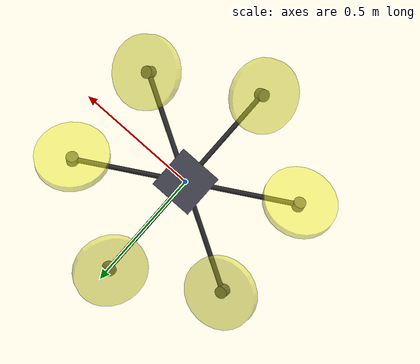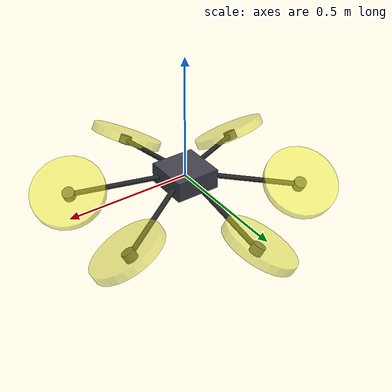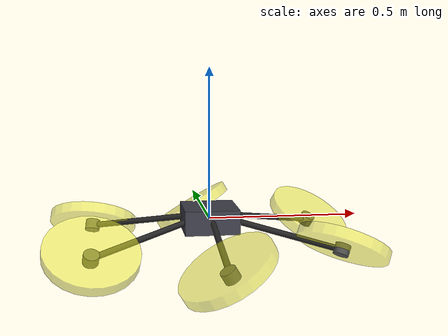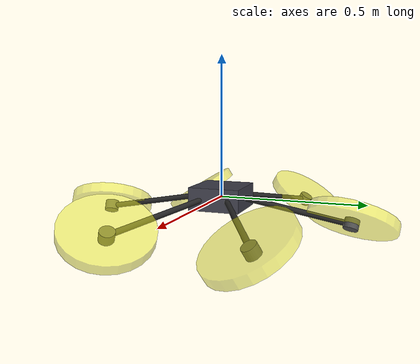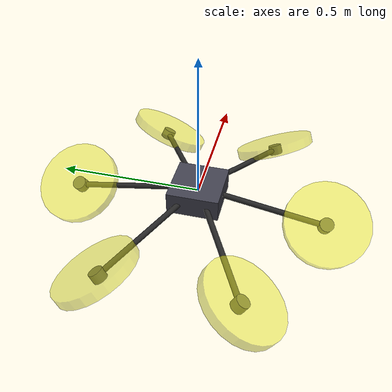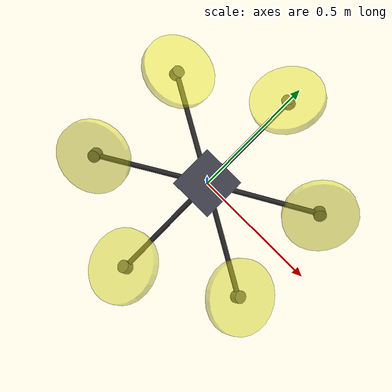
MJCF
<?xml version='1.0' encoding='utf-8'?>
<mujoco model="simple_aerial_manipulator">
    <compiler angle="radian" coordinate="local" />
    <option gravity="0 0 -9.81" timestep="0.002" />
    <default>
        <geom contype="1" conaffinity="1" margin="0.002" friction="1 0.1 0.1" />
        <joint damping="2" armature="0.01" />
        </default>
    <worldbody>
        <body name="drone_base" pos="0 0 0">
            <joint name="root_free" type="free" damping="0" armature="0" />
            <geom name="drone_chassis" type="box" size="0.090000 0.090000 0.040000" mass="4.800000" rgba="0.250000 0.250000 0.300000 1.000000" friction="1 0.1 0.1" />
            <geom name="arm_1" type="cylinder" fromto="0.070148 -0.040500 0.000000 0.389711 -0.225000 -0.065065" size="0.010000" mass="0.080000" rgba="0.150000 0.150000 0.150000 1.000000" />
            <geom name="arm_2" type="cylinder" fromto="0.070148 0.040500 0.000000 0.389711 0.225000 -0.065065" size="0.010000" mass="0.080000" rgba="0.150000 0.150000 0.150000 1.000000" />
            <geom name="arm_3" type="cylinder" fromto="0.000000 0.081000 0.000000 0.000000 0.450000 -0.065065" size="0.010000" mass="0.080000" rgba="0.150000 0.150000 0.150000 1.000000" />
            <geom name="arm_4" type="cylinder" fromto="-0.070148 0.040500 0.000000 -0.389711 0.225000 -0.065065" size="0.010000" mass="0.080000" rgba="0.150000 0.150000 0.150000 1.000000" />
            <geom name="arm_5" type="cylinder" fromto="-0.070148 -0.040500 0.000000 -0.389711 -0.225000 -0.065065" size="0.010000" mass="0.080000" rgba="0.150000 0.150000 0.150000 1.000000" />
            <geom name="arm_6" type="cylinder" fromto="-0.000000 -0.081000 0.000000 -0.000000 -0.450000 -0.065065" size="0.010000" mass="0.080000" rgba="0.150000 0.150000 0.150000 1.000000" />
            <body name="rotor_1_motor" pos="0.389711 -0.225000 -0.065065" quat="0.962515 -0.185878 0.197522 0.000000">
                <geom name="rotor_1_motor_geom" type="cylinder" size="0.025000 0.017500" mass="0.120000" rgba="0.3 0.3 0.3 1.0" />
                <body name="rotor_1" pos="0 0 0.017500">
                    <joint name="joint_prop_1" type="hinge" axis="0 0 1" damping="0.0001" armature="0.0001" />
                    <geom name="rotor_1_disk" type="cylinder" size="0.150000 0.017500" mass="0.040000" rgba="0.9 0.9 0.1 0.5" />
                    </body>
                </body>
            <body name="rotor_2_motor" pos="0.389711 0.225000 -0.065065" quat="0.962515 0.185878 0.197522 -0.000000">
                <geom name="rotor_2_motor_geom" type="cylinder" size="0.025000 0.017500" mass="0.120000" rgba="0.3 0.3 0.3 1.0" />
                <body name="rotor_2" pos="0 0 0.017500">
                    <joint name="joint_prop_2" type="hinge" axis="0 0 1" damping="0.0001" armature="0.0001" />
                    <geom name="rotor_2_disk" type="cylinder" size="0.150000 0.017500" mass="0.040000" rgba="0.9 0.9 0.1 0.5" />
                    </body>
                </body>
            <body name="rotor_3_motor" pos="0.000000 0.450000 -0.065065" quat="0.962515 -0.078120 -0.259736 0.000000">
                <geom name="rotor_3_motor_geom" type="cylinder" size="0.025000 0.017500" mass="0.120000" rgba="0.3 0.3 0.3 1.0" />
                <body name="rotor_3" pos="0 0 0.017500">
                    <joint name="joint_prop_3" type="hinge" axis="0 0 1" damping="0.0001" armature="0.0001" />
                    <geom name="rotor_3_disk" type="cylinder" size="0.150000 0.017500" mass="0.040000" rgba="0.9 0.9 0.1 0.5" />
                    </body>
                </body>
            <body name="rotor_4_motor" pos="-0.389711 0.225000 -0.065065" quat="0.962515 -0.263998 0.062214 0.000000">
                <geom name="rotor_4_motor_geom" type="cylinder" size="0.025000 0.017500" mass="0.120000" rgba="0.3 0.3 0.3 1.0" />
                <body name="rotor_4" pos="0 0 0.017500">
                    <joint name="joint_prop_4" type="hinge" axis="0 0 1" damping="0.0001" armature="0.0001" />
                    <geom name="rotor_4_disk" type="cylinder" size="0.150000 0.017500" mass="0.040000" rgba="0.9 0.9 0.1 0.5" />
                    </body>
                </body>
            <body name="rotor_5_motor" pos="-0.389711 -0.225000 -0.065065" quat="0.962515 0.263998 0.062214 -0.000000">
                <geom name="rotor_5_motor_geom" type="cylinder" size="0.025000 0.017500" mass="0.120000" rgba="0.3 0.3 0.3 1.0" />
                <body name="rotor_5" pos="0 0 0.017500">
                    <joint name="joint_prop_5" type="hinge" axis="0 0 1" damping="0.0001" armature="0.0001" />
                    <geom name="rotor_5_disk" type="cylinder" size="0.150000 0.017500" mass="0.040000" rgba="0.9 0.9 0.1 0.5" />
                    </body>
                </body>
            <body name="rotor_6_motor" pos="-0.000000 -0.450000 -0.065065" quat="0.962515 0.078120 -0.259736 0.000000">
                <geom name="rotor_6_motor_geom" type="cylinder" size="0.025000 0.017500" mass="0.120000" rgba="0.3 0.3 0.3 1.0" />
                <body name="rotor_6" pos="0 0 0.017500">
                    <joint name="joint_prop_6" type="hinge" axis="0 0 1" damping="0.0001" armature="0.0001" />
                    <geom name="rotor_6_disk" type="cylinder" size="0.150000 0.017500" mass="0.040000" rgba="0.9 0.9 0.1 0.5" />
                    </body>
                </body>
        </body>
    </worldbody>
    <actuator>
        <motor name="joint_prop_1_motor" joint="joint_prop_1" ctrllimited="true" ctrlrange="-50 50" gear="1" />
        <motor name="joint_prop_2_motor" joint="joint_prop_2" ctrllimited="true" ctrlrange="-50 50" gear="1" />
        <motor name="joint_prop_3_motor" joint="joint_prop_3" ctrllimited="true" ctrlrange="-50 50" gear="1" />
        <motor name="joint_prop_4_motor" joint="joint_prop_4" ctrllimited="true" ctrlrange="-50 50" gear="1" />
        <motor name="joint_prop_5_motor" joint="joint_prop_5" ctrllimited="true" ctrlrange="-50 50" gear="1" />
        <motor name="joint_prop_6_motor" joint="joint_prop_6" ctrllimited="true" ctrlrange="-50 50" gear="1" />
    </actuator>
</mujoco>
